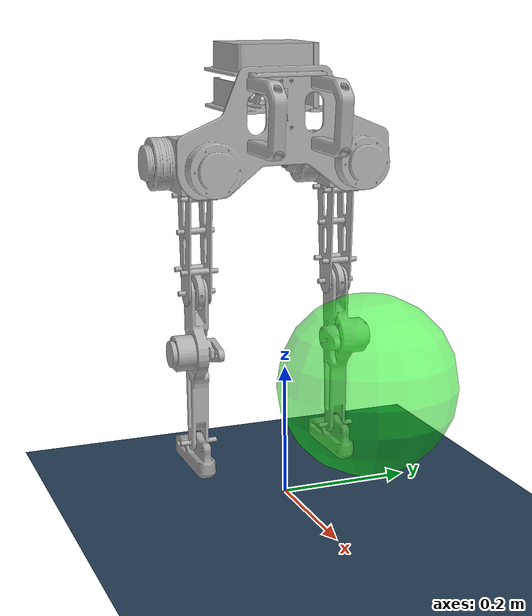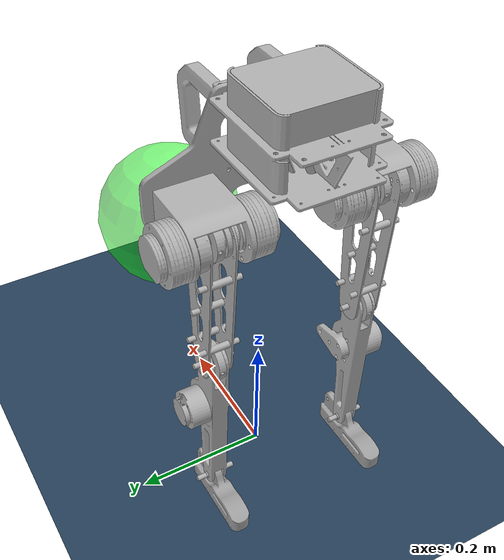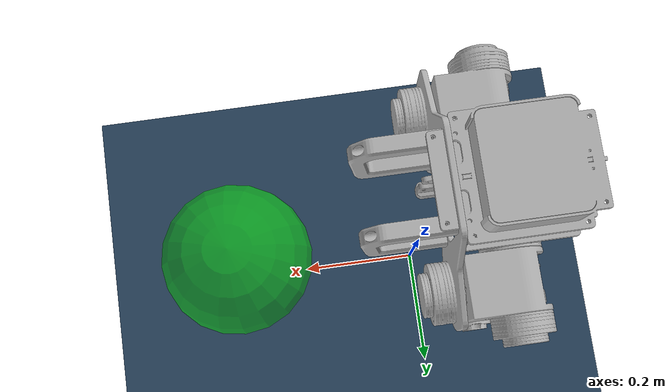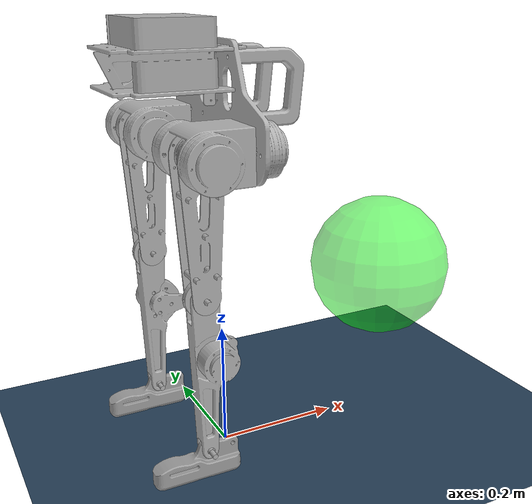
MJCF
<mujoco model="YP Ready2Jump">
  <include file="../common.xml"/>
  <!-- modified from https://github.com/google-deepmind/mujoco_menagerie/tree/main/robotis_op3 -->
  <include file="mjmodel.xml" />
  <size memory="1M"/>

  <custom>
    <numeric name="agent_planner" data="2" />
    <numeric name="agent_horizon" data="0.513" />
    <numeric name="agent_timestep" data="0.0025" />
    <numeric name="sampling_trajectories" data="33"/>
    <numeric name="sampling_spline_points" data="3" />
    <numeric name="sampling_exploration" data="0.1" />
    <numeric name="gradient_spline_points" data="5" />
    <numeric name="derivative_skip" data="3" />
    <numeric name="sample_gradient_trajectories" data="8"/>
    <numeric name="residual_Height Goal" data="0.48 0.0 2" />
    <numeric name="residual_Foot distance Goal" data="0.1 0.0 0.3" />
    <numeric name="residual_Foot plane margin" data="0.22 0.0 0.4" />
    <numeric name="residual_leg ext margin" data="0.134 0.0 0.3" />
    <numeric name="residual_Cadence" data="2 0 4" />
    <numeric name="residual_Amplitude" data=".06 0 0.2" />
    <numeric name="residual_Duty ratio" data="0 0 1"/>
    <numeric name="residual_select_Gait" data="0"/>
    <text name="residual_list_Gait" data="Stand|Walk|Trot|Jump" />
    <text name="task_transition" data="Stand|Walk|Jump" />
  </custom>

  <sensor>
    <!-- cost -->
    <user name="Height" dim="1" user="6 100.0 0.0 100.0 0.1" />
    <user name="Balance" dim="1" user="6 50.0 0.0 100.0 0.1" />
    <user name="CoM Vel." dim="2" user="0 10.0 0.0 100.0" />
    <user name="Feet Diff" dim="1" user="0 50.0 0.0 100.0" />
    <user name="Leg Sideplan" dim="1" user="0 50 0 100 0.1" />
    <user name="Gait" dim="4" user="6 2 0 1000 0.03" />
    <user name="Ctrl Diff" dim="8" user="0 1.2 0.0 1.5" />
    <user name="Upright" dim="13" user="2 5.0 0.0 25.0 0.01" />
    <user name="Joint Vel" dim="8" user="0 1.0e-3 0 1.0e-3" />
    <user name="Effort" dim="8" user="0 0.02 0.0 0.1" />
    <user name="Goal Pos" dim="1" user="2 50 0 100 0.1" />
    <user name="Leg Joint Diff" dim="1" user="2 50 0 100 0.1" />

    <framepos name="head_position" objtype="site" objname="head"/>
    <framequat name="head_orientation" objtype="site" objname="head"/>

    <framepos name="left_foot_position" objtype="site" objname="left_foot"/>
    <framepos name="right_foot_position" objtype="site" objname="right_foot"/>

    <framepos name="left_foot_ref" objtype="site" objname="left_contact_ref"/>
    <framepos name="right_foot_ref" objtype="site" objname="right_contact_ref"/>

    <subtreelinvel name="body_subtreelinvel" body="pelvis"/>
    <subtreecom name="body_subtreecom" body="pelvis"/>

    <framepos      name="trace0" objtype="site" objname="head"/>
    <framepos      name="trace1" objtype="site" objname="left_foot"/>
    <framepos      name="trace2" objtype="site" objname="right_foot"/>

    <framezaxis name="torso_up" objtype="site" objname="torso"/>
    <framezaxis name="foot_right_up" objtype="site" objname="right_foot"/>
    <framezaxis name="foot_left_up" objtype="site" objname="left_foot"/>

    <jointpos name="HIP_R"   joint="HR"/>
    <jointpos name="HIP_L"   joint="HL"/>
    <jointpos name="THIGH_R" joint="TR"/>
    <jointpos name="THIGH_L" joint="TL"/>
    <jointpos name="SHIN_R"  joint="SR"/>
    <jointpos name="SHIN_L"  joint="SL"/>
    <jointpos name="FOOT_R"  joint="FR"/>
    <jointpos name="FOOT_L"  joint="FL"/>

    <touch name="LF_touch" site="LF"/>
    <touch name="LB_touch" site="LB"/>
    <touch name="RF_touch" site="RF"/>
    <touch name="RB_touch" site="RB"/>

  </sensor>

  <worldbody>
    <body name="goal" mocap="true" pos=".3 0 0.26">
      <geom size="0.12" contype="0" conaffinity="0" rgba="0 1 0 .5" group="2"/>
    </body>
  </worldbody>

  <keyframe>
    <key name='home'
    qpos='0 0 0.48 0 0 0 0 0 0 0 0 0 0 0 0'/>
  </keyframe>
</mujoco>

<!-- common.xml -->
<mujoco>

    <visual>
        <headlight ambient=".4 .4 .4" diffuse=".8 .8 .8" specular="0.1 0.1 0.1"/>
        <map znear=".01"/>
        <quality shadowsize="2048"/>
        <global elevation="-15"/>
    </visual>

    <asset>
        <texture name="blue_grid" type="2d" builtin="checker" rgb1=".02 .14 .44" rgb2=".27 .55 1" width="300" height="300" mark="edge" markrgb="1 1 1"/>
        <material name="blue_grid" texture="blue_grid" texrepeat="1 1" texuniform="true" reflectance=".2"/>

        <texture name="grey_grid" type="2d" builtin="checker" rgb1=".26 .26 .26" rgb2=".6 .6 .6" width="300" height="300" mark="edge" markrgb="1 1 1"/>
        <material name="grey_grid" texture="grey_grid" texrepeat="1 1" texuniform="true" reflectance=".2"/>
        <texture name="skybox" type="skybox" builtin="gradient" rgb1=".66 .79 1" rgb2=".9 .91 .93" width="800" height="800"/>

        <material name="self" rgba=".7 .5 .3 1"/>
        <material name="self_default" rgba=".7 .5 .3 1"/>
        <material name="self_highlight" rgba="0 .5 .3 1"/>
        <material name="effector" rgba=".7 .4 .2 1"/>
        <material name="effector_default" rgba=".7 .4 .2 1"/>
        <material name="effector_highlight" rgba="0 .5 .3 1"/>
        <material name="decoration" rgba=".2 .6 .3 1"/>
        <material name="eye" rgba="0 .2 1 1"/>
        <material name="target" rgba=".6 .3 .3 1"/>
        <material name="target_default" rgba=".6 .3 .3 1"/>
        <material name="target_highlight" rgba=".6 .3 .3 .4"/>
        <material name="site" rgba=".5 .5 .5 .3"/>
    </asset>

    <size memory="1M"/>

    <statistic extent="0.4" center="0.3 0.1 0"/>

    <visual>
        <quality shadowsize="8192"/>
        <global azimuth="180" elevation="-30"/>
    </visual>

    <default>
        <geom friction="1.0"/>
    </default>

    <compiler angle="radian" autolimits="true"/>

    <asset>
        <mesh name="apple" file="../../shared_assets/apple/apple.obj" />
        <mesh name="apple_contact0" file="../../shared_assets/apple/contact0.stl"  />
        <mesh name="apple_contact1" file="../../shared_assets/apple/contact1.stl"  />

        <mesh name="doorknob" file="../../shared_assets/doorknob/doorknob.obj" />

        <mesh name="flashlight" file="../../shared_assets/flashlight/flashlight.obj" />
        <mesh name="flashlight_contact0" file="../../shared_assets/flashlight/contact0.stl"  />
        <mesh name="flashlight_contact1" file="../../shared_assets/flashlight/contact1.stl"  />

        <mesh name="hammer" file="../../shared_assets/hammer/hammer.obj" />
        <mesh name="hammer_contact0" file="../../shared_assets/hammer/contact0.stl"  />
        <mesh name="hammer_contact1" file="../../shared_assets/hammer/contact1.stl"  />

        <mesh name="phone" file="../../shared_assets/phone/phone.obj" />
        <mesh name="phone_contact0" file="../../shared_assets/phone/contact0.stl"  />
        <mesh name="phone_contact1" file="../../shared_assets/phone/contact1.stl"  />
        <mesh name="phone_contact2" file="../../shared_assets/phone/contact2.stl"  />

        <mesh name="stapler" file="../../shared_assets/stapler/stapler.obj" />
        <mesh name="stapler_contact0" file="../../shared_assets/stapler/contact0.stl"  />
        <mesh name="stapler_contact1" file="../../shared_assets/stapler/contact1.stl"  />
        <mesh name="stapler_contact2" file="../../shared_assets/stapler/contact2.stl"  />
        <mesh name="stapler_contact3" file="../../shared_assets/stapler/contact3.stl"  />
        <mesh name="stapler_contact4" file="../../shared_assets/stapler/contact4.stl"  />

        <mesh name="waterbottle" file="../../shared_assets/waterbottle/waterbottle.obj" />
        <mesh name="waterbottle_contact0" file="../../shared_assets/waterbottle/contact0.stl"  />
        <mesh name="waterbottle_contact1" file="../../shared_assets/waterbottle/contact1.stl"  />
    </asset>

</mujoco>

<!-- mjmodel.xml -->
<mujoco model="saturdayMASTER.SLDASM">
  <compiler angle="radian" meshdir="assets" texturedir="assets"/>
  <size njmax="500" nconmax="100" />
  <option cone="elliptic" impratio="10"/>

  <default>
    <joint damping="0.03" armature="0.002" frictionloss="0.02"/>
    <position kp="10" kv="1" ctrlrange="-3.141592 3.141592" forcerange="-9 9"/>
  </default>

  <asset>
    <mesh name="base_link" file="base_link.STL"/>
    <mesh name="HR" file="HR.STL"/>
    <mesh name="TR" file="TR.STL"/>
    <mesh name="SR" file="SR.STL"/>
    <mesh name="FR" file="FR.STL"/>
    <mesh name="HL" file="HL.STL"/>
    <mesh name="TL" file="TL.STL"/>
    <mesh name="SL" file="SL.STL"/>
    <mesh name="FL" file="FL.STL"/>
    <mesh name="PCPC" file="PCPC.STL"/>

    <texture type="2d" name="trunk_A1" file="trunk_A1.png"/>
    <material name="carbonfibre" texture="trunk_A1" specular="0" shininess="0.25"/>

    <material name="dark" specular="0" shininess="0.25" rgba="0.2 0.2 0.2 1"/>
    <texture name="grid" type="2d" builtin="checker" width="512" height="512" rgb1=".1 .2 .3" rgb2=".2 .3 .4"/>
    <material name="grid" texture="grid" texrepeat="1 1" texuniform="true" reflectance=".2"/>
  </asset>

   <visual>
	  <headlight diffuse="0.6 0.6 0.6" ambient="0.3 0.3 0.3" specular="0 0 0"/>
	  <global azimuth="-90"/>
    <scale forcewidth="0.035" contactwidth="0.1" contactheight="0.04" com="0.2" />
    <rgba com="0.502 1 0 0.5" contactpoint="1 1 0.6 0.4" contactforce="0.98 0.4 0.4 0.7" />
  </visual>

  <statistic extent="1" center="0 0 .3"/>

  <worldbody>
    <light pos="0 0 1.5" dir="0 0 -1" diffuse="0.5 0.5 0.5" specular="0.3 0.3 0.3" directional="true" castshadow="false"/>
    <geom type="plane" size="10 10 .01" material="grid" friction="1 0.005 0.0001"/>
    <body name="pelvis" pos = "0 0 .51" quat = "1 0 0 1">
      <freejoint/>
      <site name="head" rgba="1 0 0 1" pos="0.0 0.1 0.0" group="5"/>
      <body name="base_inertia">
        <inertial pos="-9.8075E-08 -0.026388 0.016857" quat="7.04842911E-01 7.09363426E-01 2.95162595E-06 -3.53024086E-06" mass="0.8" diaginertia="0.0010747 0.00184807 0.00249313"/>
        <geom type="mesh" rgba="0.69804 0.69804 0.69804 1" mesh="base_link"/>
      </body>
      <body name="pc_inertia">
        <inertial pos="0 0.07705 0.13101" quat="9.99995560e-01 2.97977116e-03 1.48833623e-05 1.00802829e-05" mass="0.84889" diaginertia="0.0012861 0.00135326 0.00243134"/>
        <geom pos="0 0.1668 0.076047" type="mesh" rgba="0.69804 0.69804 0.69804 1" mesh="PCPC"/>
      </body>
      <site name="torso"/>
      <body name="HR" pos="0.116 0.0760307 0">
        <inertial pos="-0.0022112 -0.0074687 0.0012046" quat="0.610545 0.791982 -0.00018656 -0.000166422" mass="1.1716" diaginertia="0.0010107 0.000889554 0.000807186"/>
        <joint name="HR" pos="0 0 0" axis="0 -1 0" limited="false"/>
        <geom type="mesh" rgba="0.69804 0.69804 0.69804 1" mesh="HR"/>
        <body name="TR">
          <inertial pos="0.0032217 -1.4794e-12 -0.11697" quat="1 -2.44026e-05 0 0" mass="0.2485" diaginertia="0.00045966 0.00043118 6.6608e-05"/>
          <joint name="TR" pos="0 0 0" axis="-1 0 0" limited="false"/>
          <geom type="mesh" rgba="0.69804 0.69804 0.69804 1" mesh="TR"/>
          <body name="SR" pos="0 0 -0.2">
            <inertial pos="0.013454 -0.0086691 -0.1053" quat="0.999944 0.00459107 -0.00078075 0.00948332" mass="0.45579" diaginertia="0.000577103 0.000543322 0.000136545"/>
            <joint name="SR" pos="0 0 0" axis="1 0 0" limited="false"/>
            <geom type="mesh" rgba="0.69804 0.69804 0.69804 1" mesh="SR"/>
            <body name="FR" pos="0 0 -0.24">
              <inertial pos="6.2538e-06 0.015791 -0.026269" quat="0.71996 0.694016 0.000136179 -0.000175049" mass="0.12898" diaginertia="0.00019456 0.000193198 1.66785e-05"/>
              <joint name="FR" pos="0 0 0" axis="1 0 0" limited="false" damping="0.07" frictionloss="0.2" armature="0.03"/>
              <geom type="mesh" rgba="0.62745 0.62745 0.62745 1" mesh="FR"/>
              <site name="right_contact_ref" rgba="0 1 0 1" type="sphere" size="0.02"  pos="0.0 0.0 0.0" group="5"/>
              <site name="right_foot" rgba="0 1 0 0.5" pos="0.0 0.0 -0.04" group="5"/>
              <site name="RB" rgba="1 0 0 1" pos="0 0.04 -0.04" type="cylinder" size="0.05" group="5"/>
              <site name="RF" rgba="1 0 0 1" pos="0 -0.04 -0.04" type="cylinder" size="0.05" group="5"/>
            </body>
          </body>
        </body>
      </body>
      <body name="HL" pos="-0.116 0.0760307 0">
        <inertial pos="0.0022047 -0.0074687 0.0010787" quat="0.61048 0.791973 -0.00678111 0.00679143" mass="1.1716" diaginertia="0.00101075 0.00088951 0.000807185"/>
        <joint name="HL" pos="0 0 0" axis="0 -1 0" limited="false"/>
        <geom type="mesh" rgba="0.69804 0.69804 0.69804 1" mesh="HL"/>
        <body name="TL">
          <inertial pos="-0.0032217 1.4785e-12 -0.11697" quat="1 2.44026e-05 0 0" mass="0.2485" diaginertia="0.00045966 0.00043118 6.6608e-05"/>
          <joint name="TL" pos="0 0 0" axis="-1 0 0" limited="false"/>
          <geom type="mesh" rgba="0.69804 0.69804 0.69804 1" mesh="TL"/>
          <body name="SL" pos="0 0 -0.2">
            <inertial pos="-0.013454 -0.0086668 -0.10518" quat="0.999946 0.00483719 -2.73708e-05 -0.00918761" mass="0.45579" diaginertia="0.000577101 0.000543337 0.000136532"/>
            <joint name="SL" pos="0 0 0" axis="1 0 0" limited="false"/>
            <geom type="mesh" rgba="0.69804 0.69804 0.69804 1" mesh="SL"/>
            <body name="FL" pos="0 0 -0.24">
              <inertial pos="6.2538e-06 0.015791 -0.026269" quat="0.71996 0.694016 0.000136179 -0.000175049" mass="0.12898" diaginertia="0.00019456 0.000193198 1.66785e-05"/>
              <joint name="FL" pos="0 0 0" axis="1 0 0" limited="false" damping="0.07" frictionloss="0.2" armature="0.03"/>
              <geom type="mesh" rgba="0.62745 0.62745 0.62745 1" mesh="FL"/>
              <site name="left_contact_ref" rgba="0 1 0 1" type="sphere" size="0.02" pos="0.0 0.0 0.0" group="5"/>
              <site name="left_foot" rgba="1 0 0 1" pos="0 0 -0.04" group="5"/>
              <site name="LB" rgba="1 0 0 1" pos="0 0.04 -0.04" type="cylinder" size="0.05" group="5"/>
              <site name="LF" rgba="1 0 0 1" pos="0 -0.04 -0.04" type="cylinder" size="0.05"  group="5"/>
            </body>
          </body>
        </body>
      </body>
    </body>
  </worldbody>
  <actuator>
    <position name="hipr_act" joint="HR"/>
    <position name="thighr_act" joint="TR"/>
    <position name="shinr_act" joint="SR"/>
    <position name="footr_act" joint="FR" kp="30" kv="5"/>
    <position name="hipl_act" joint="HL"/>
    <position name="thighl_act" joint="TL"/>
    <position name="shinl_act" joint="SL"/>
    <position name="footl_act" joint="FL" kp="30" kv="5"/>
  </actuator>
</mujoco>
